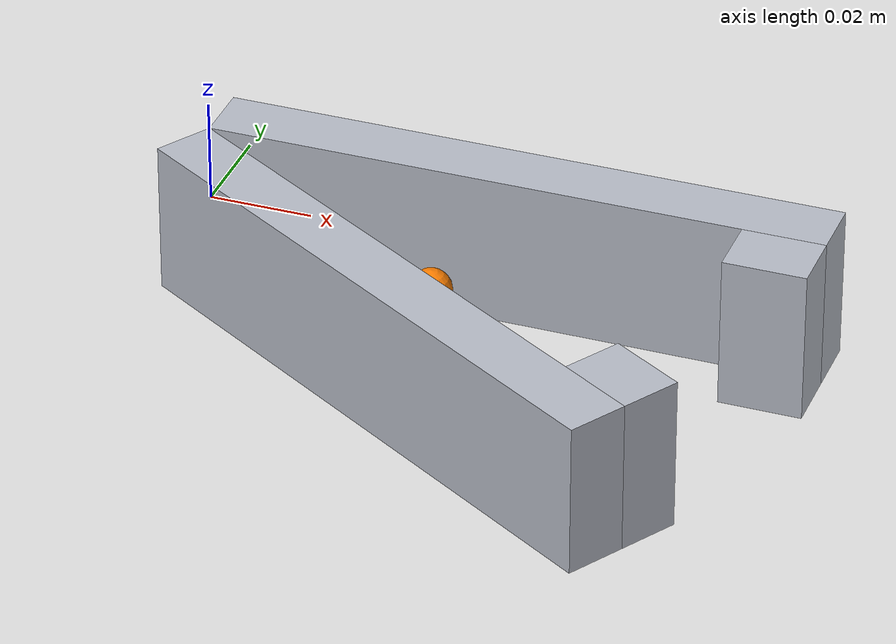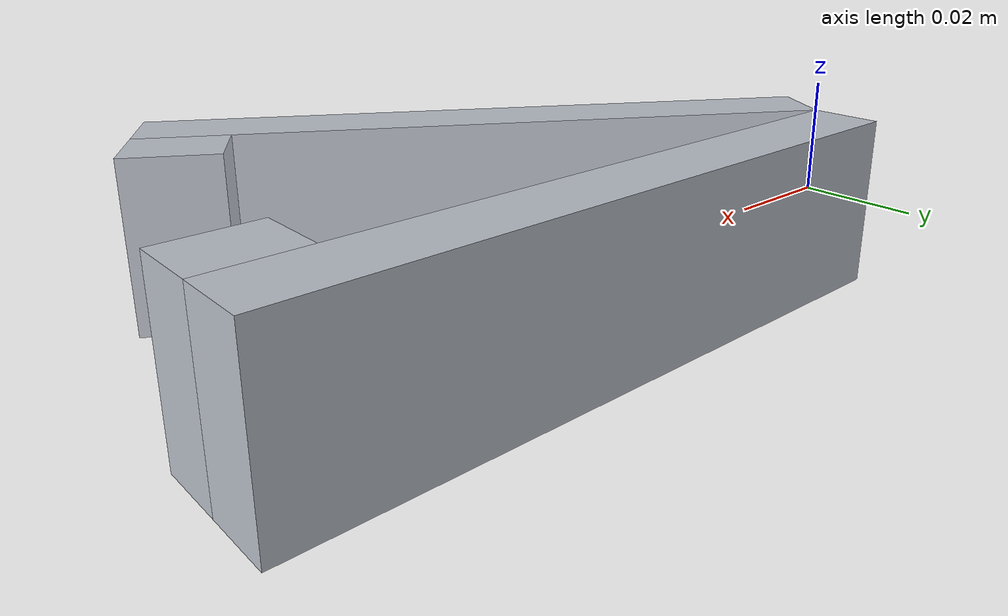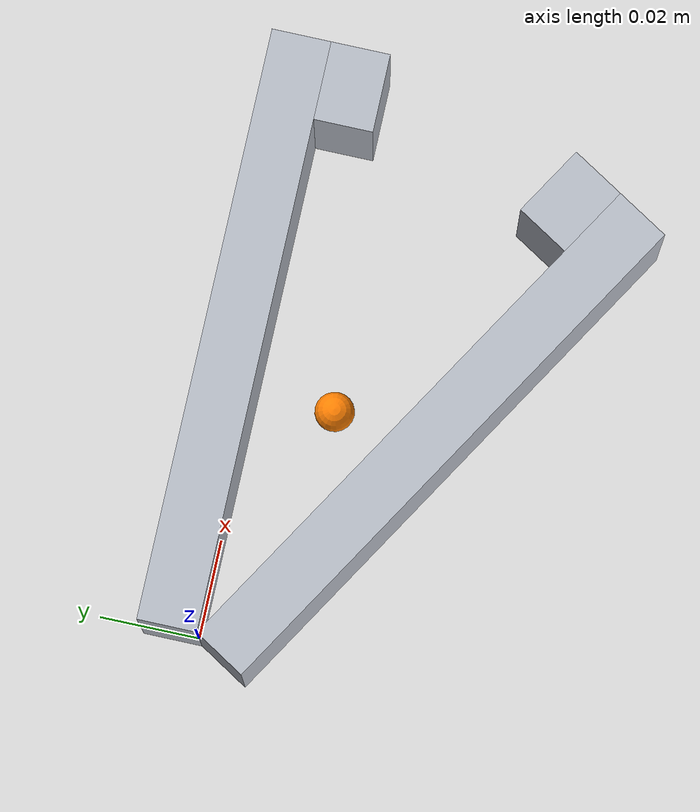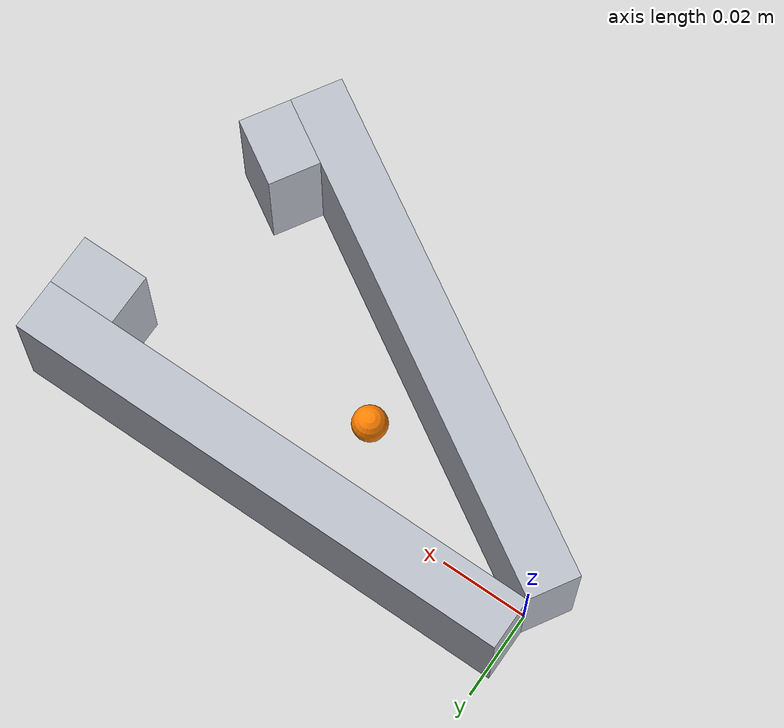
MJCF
<mujoco model="tong">
  <compiler angle="radian" autolimits="true"/>

  <default>
    <default class="tong">
      <geom type="box" rgba="0.72 0.74 0.78 1" friction="0.9 0.005 0.0001"
            contype="1" conaffinity="1" condim="3"/>
    </default>
  </default>

  <worldbody>
    <!-- Lower jaw, and the body the tong is carried by. Runs along +x
         from the pivot at the origin; its top face is the z = 0 plane. -->
    <body name="tong_base" pos="0 0 0" childclass="tong">
      <freejoint name="tong_free"/>
      <inertial pos="0.06 0 0" mass="0.11664"
                diaginertia="1.01477e-05 1.48716e-04 1.41368e-04"/>
      <geom name="tong_base_arm" type="box" size="0.06 0.006 0.015" pos="0.06 0.006 0"/>
      <geom name="tong_base_pad" type="box" size="0.008 0.006 0.015" pos="0.112 -0.006 0"/>
      <site name="grip_site" pos="0.05 -0.016196 0" size="0.004" rgba="1 0.5 0 1"/>

      <body name="tong_jaw" pos="0 0 0" quat="0.963019 0 0 -0.269434">
        <joint name="tong_hinge" type="hinge" axis="0 0 1" range="-0.15 0.3244"
               stiffness="1.9476" damping="0.03116"/>
        <inertial pos="0.06 0 0" mass="0.11664"
                  diaginertia="1.01477e-05 1.48716e-04 1.41368e-04"/>
        <geom name="tong_jaw_arm" type="box" size="0.06 0.006 0.015" pos="0.06 -0.006 0"/>
        <geom name="tong_jaw_pad" type="box" size="0.008 0.006 0.015" pos="0.112 0.006 0"/>
      </body>
    </body>
  </worldbody>

  <contact>
    <exclude body1="tong_base" body2="tong_jaw"/>
  </contact>
</mujoco>
